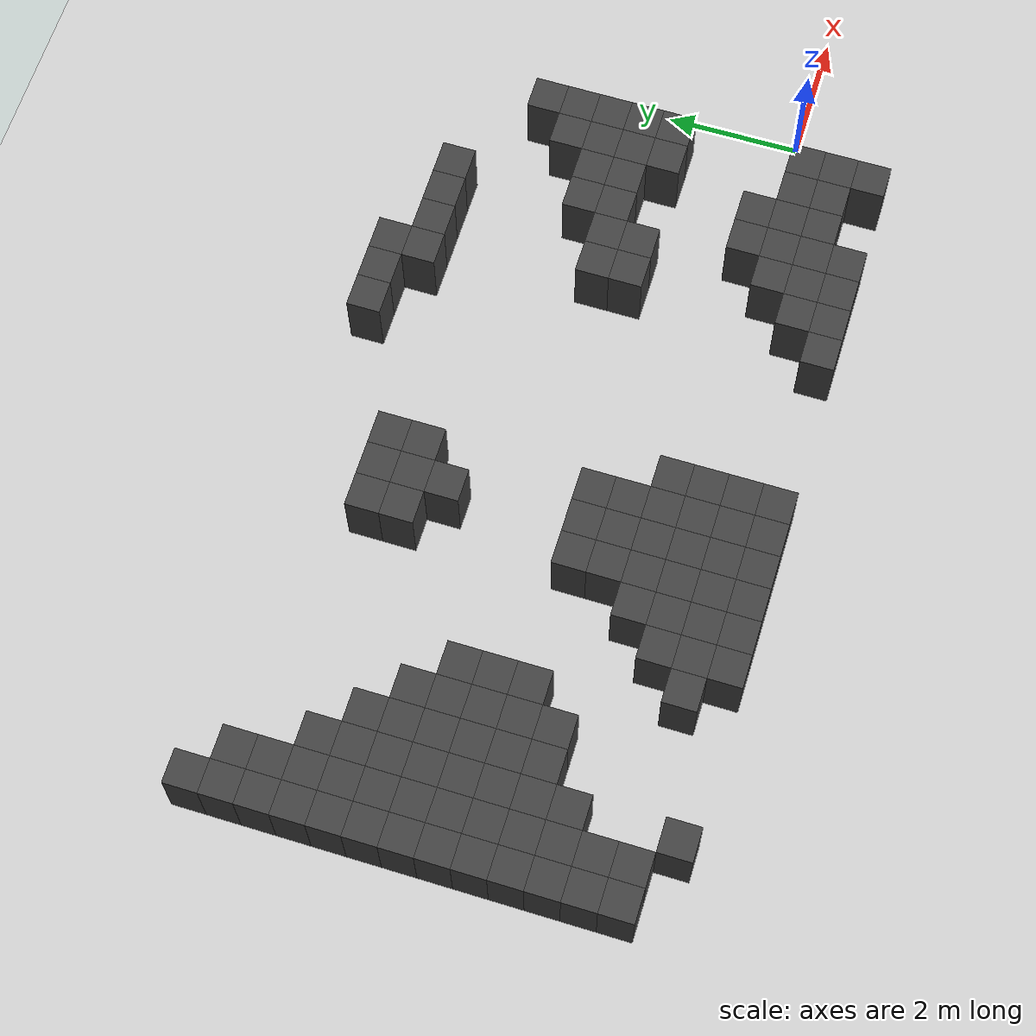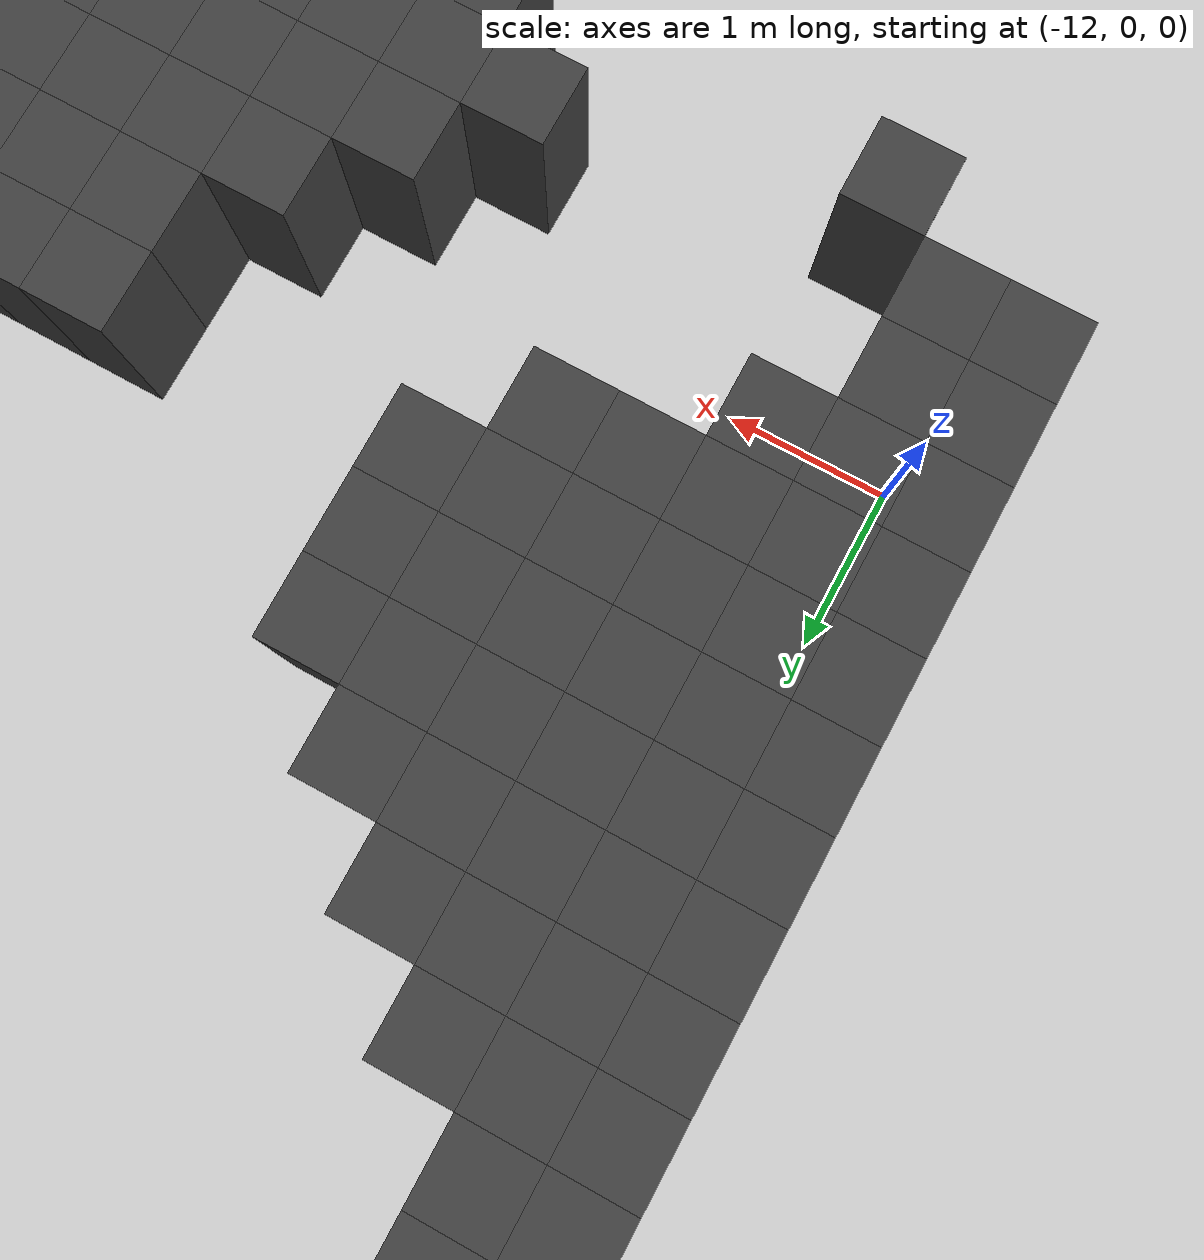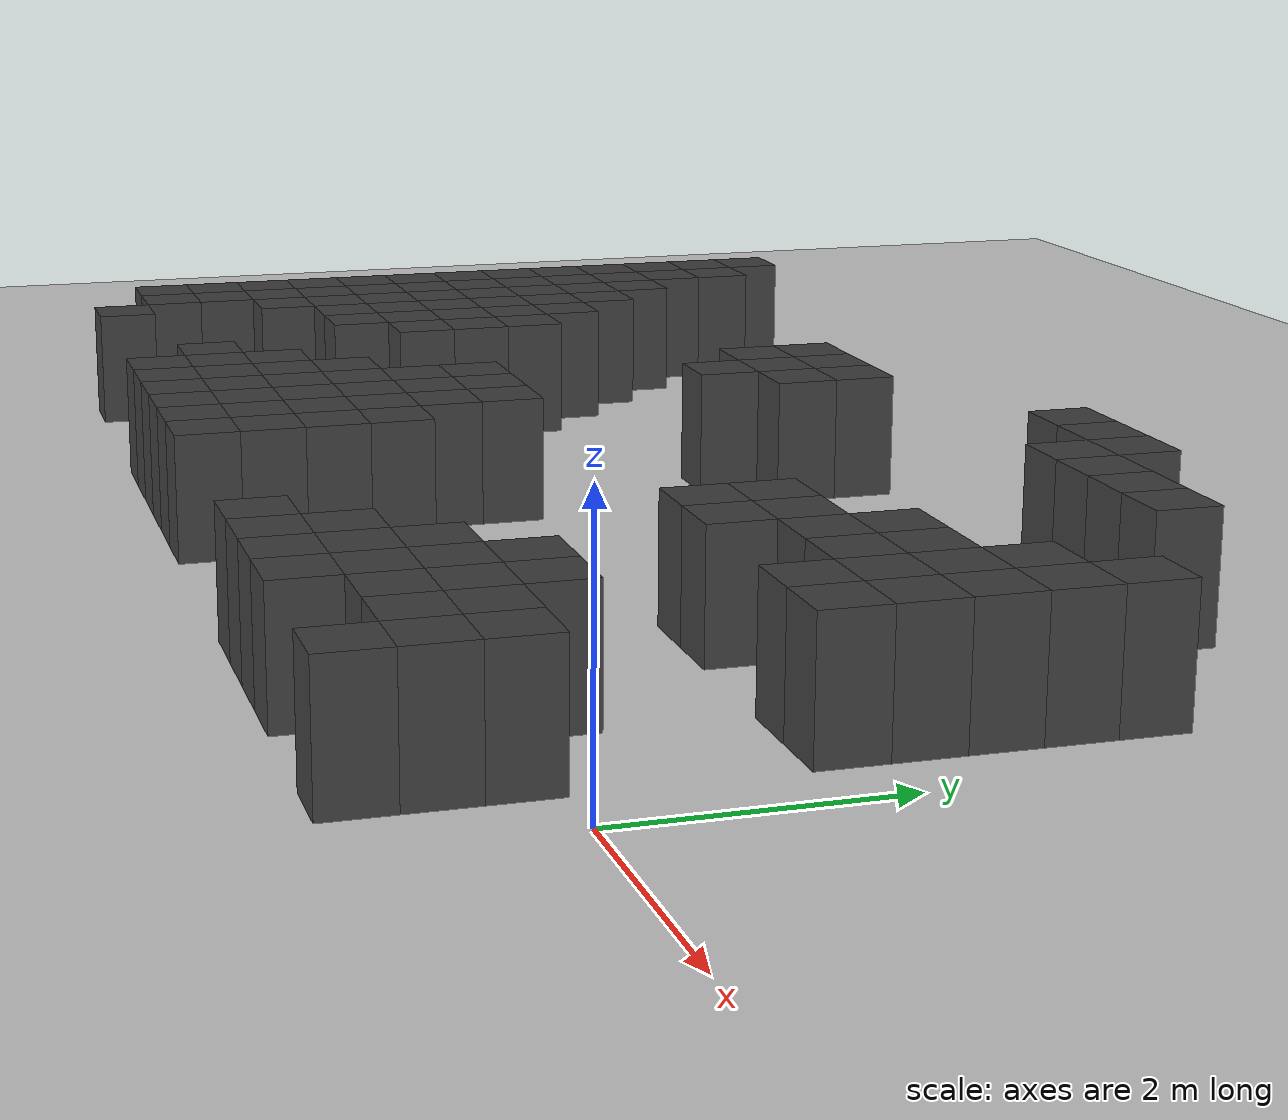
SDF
<sdf version="1.7">
 <world name="map_9713">
  <model name="ground_plane">
   <static>true</static>
   <link name="link">
    <collision name="collision">
     <geometry><plane><normal>0 0 1</normal><size>200 200</size></plane></geometry>
    </collision>
    <visual name="visual">
     <geometry><plane><normal>0 0 1</normal><size>200 200</size></plane></geometry>
     <material><ambient>0.8 0.8 0.8 1</ambient><diffuse>0.8 0.8 0.8 1</diffuse></material>
    </visual>
   </link>
  </model>
  <model name="maze_environment">
   <static>true</static>
   <link name="wall_256">
    <pose>-12.250 5.250 0.500 0 0 0</pose>
    <collision name="col"><geometry><box><size>0.5 0.5 1.0</size></box></geometry></collision>
    <visual name="vis">
     <geometry><box><size>0.5 0.5 1.0</size></box></geometry>
     <material><ambient>0.15 0.15 0.15 1</ambient><diffuse>0.25 0.25 0.25 1</diffuse></material>
    </visual>
   </link>
   <link name="wall_257">
    <pose>-4.750 5.250 0.500 0 0 0</pose>
    <collision name="col"><geometry><box><size>0.5 0.5 1.0</size></box></geometry></collision>
    <visual name="vis">
     <geometry><box><size>0.5 0.5 1.0</size></box></geometry>
     <material><ambient>0.15 0.15 0.15 1</ambient><diffuse>0.25 0.25 0.25 1</diffuse></material>
    </visual>
   </link>
   <link name="wall_258">
    <pose>-4.250 5.250 0.500 0 0 0</pose>
    <collision name="col"><geometry><box><size>0.5 0.5 1.0</size></box></geometry></collision>
    <visual name="vis">
     <geometry><box><size>0.5 0.5 1.0</size></box></geometry>
     <material><ambient>0.15 0.15 0.15 1</ambient><diffuse>0.25 0.25 0.25 1</diffuse></material>
    </visual>
   </link>
   <link name="wall_259">
    <pose>-3.750 5.250 0.500 0 0 0</pose>
    <collision name="col"><geometry><box><size>0.5 0.5 1.0</size></box></geometry></collision>
    <visual name="vis">
     <geometry><box><size>0.5 0.5 1.0</size></box></geometry>
     <material><ambient>0.15 0.15 0.15 1</ambient><diffuse>0.25 0.25 0.25 1</diffuse></material>
    </visual>
   </link>
   <link name="wall_271">
    <pose>-12.250 4.750 0.500 0 0 0</pose>
    <collision name="col"><geometry><box><size>0.5 0.5 1.0</size></box></geometry></collision>
    <visual name="vis">
     <geometry><box><size>0.5 0.5 1.0</size></box></geometry>
     <material><ambient>0.15 0.15 0.15 1</ambient><diffuse>0.25 0.25 0.25 1</diffuse></material>
    </visual>
   </link>
   <link name="wall_272">
    <pose>-11.750 4.750 0.500 0 0 0</pose>
    <collision name="col"><geometry><box><size>0.5 0.5 1.0</size></box></geometry></collision>
    <visual name="vis">
     <geometry><box><size>0.5 0.5 1.0</size></box></geometry>
     <material><ambient>0.15 0.15 0.15 1</ambient><diffuse>0.25 0.25 0.25 1</diffuse></material>
    </visual>
   </link>
   <link name="wall_273">
    <pose>-3.750 4.750 0.500 0 0 0</pose>
    <collision name="col"><geometry><box><size>0.5 0.5 1.0</size></box></geometry></collision>
    <visual name="vis">
     <geometry><box><size>0.5 0.5 1.0</size></box></geometry>
     <material><ambient>0.15 0.15 0.15 1</ambient><diffuse>0.25 0.25 0.25 1</diffuse></material>
    </visual>
   </link>
   <link name="wall_274">
    <pose>-3.250 4.750 0.500 0 0 0</pose>
    <collision name="col"><geometry><box><size>0.5 0.5 1.0</size></box></geometry></collision>
    <visual name="vis">
     <geometry><box><size>0.5 0.5 1.0</size></box></geometry>
     <material><ambient>0.15 0.15 0.15 1</ambient><diffuse>0.25 0.25 0.25 1</diffuse></material>
    </visual>
   </link>
   <link name="wall_275">
    <pose>-2.750 4.750 0.500 0 0 0</pose>
    <collision name="col"><geometry><box><size>0.5 0.5 1.0</size></box></geometry></collision>
    <visual name="vis">
     <geometry><box><size>0.5 0.5 1.0</size></box></geometry>
     <material><ambient>0.15 0.15 0.15 1</ambient><diffuse>0.25 0.25 0.25 1</diffuse></material>
    </visual>
   </link>
   <link name="wall_276">
    <pose>-2.250 4.750 0.500 0 0 0</pose>
    <collision name="col"><geometry><box><size>0.5 0.5 1.0</size></box></geometry></collision>
    <visual name="vis">
     <geometry><box><size>0.5 0.5 1.0</size></box></geometry>
     <material><ambient>0.15 0.15 0.15 1</ambient><diffuse>0.25 0.25 0.25 1</diffuse></material>
    </visual>
   </link>
   <link name="wall_283">
    <pose>-12.250 4.250 0.500 0 0 0</pose>
    <collision name="col"><geometry><box><size>0.5 0.5 1.0</size></box></geometry></collision>
    <visual name="vis">
     <geometry><box><size>0.5 0.5 1.0</size></box></geometry>
     <material><ambient>0.15 0.15 0.15 1</ambient><diffuse>0.25 0.25 0.25 1</diffuse></material>
    </visual>
   </link>
   <link name="wall_284">
    <pose>-11.750 4.250 0.500 0 0 0</pose>
    <collision name="col"><geometry><box><size>0.5 0.5 1.0</size></box></geometry></collision>
    <visual name="vis">
     <geometry><box><size>0.5 0.5 1.0</size></box></geometry>
     <material><ambient>0.15 0.15 0.15 1</ambient><diffuse>0.25 0.25 0.25 1</diffuse></material>
    </visual>
   </link>
   <link name="wall_285">
    <pose>-7.750 4.250 0.500 0 0 0</pose>
    <collision name="col"><geometry><box><size>0.5 0.5 1.0</size></box></geometry></collision>
    <visual name="vis">
     <geometry><box><size>0.5 0.5 1.0</size></box></geometry>
     <material><ambient>0.15 0.15 0.15 1</ambient><diffuse>0.25 0.25 0.25 1</diffuse></material>
    </visual>
   </link>
   <link name="wall_286">
    <pose>-7.250 4.250 0.500 0 0 0</pose>
    <collision name="col"><geometry><box><size>0.5 0.5 1.0</size></box></geometry></collision>
    <visual name="vis">
     <geometry><box><size>0.5 0.5 1.0</size></box></geometry>
     <material><ambient>0.15 0.15 0.15 1</ambient><diffuse>0.25 0.25 0.25 1</diffuse></material>
    </visual>
   </link>
   <link name="wall_287">
    <pose>-6.750 4.250 0.500 0 0 0</pose>
    <collision name="col"><geometry><box><size>0.5 0.5 1.0</size></box></geometry></collision>
    <visual name="vis">
     <geometry><box><size>0.5 0.5 1.0</size></box></geometry>
     <material><ambient>0.15 0.15 0.15 1</ambient><diffuse>0.25 0.25 0.25 1</diffuse></material>
    </visual>
   </link>
   <link name="wall_294">
    <pose>-12.250 3.750 0.500 0 0 0</pose>
    <collision name="col"><geometry><box><size>0.5 0.5 1.0</size></box></geometry></collision>
    <visual name="vis">
     <geometry><box><size>0.5 0.5 1.0</size></box></geometry>
     <material><ambient>0.15 0.15 0.15 1</ambient><diffuse>0.25 0.25 0.25 1</diffuse></material>
    </visual>
   </link>
   <link name="wall_295">
    <pose>-11.750 3.750 0.500 0 0 0</pose>
    <collision name="col"><geometry><box><size>0.5 0.5 1.0</size></box></geometry></collision>
    <visual name="vis">
     <geometry><box><size>0.5 0.5 1.0</size></box></geometry>
     <material><ambient>0.15 0.15 0.15 1</ambient><diffuse>0.25 0.25 0.25 1</diffuse></material>
    </visual>
   </link>
   <link name="wall_296">
    <pose>-11.250 3.750 0.500 0 0 0</pose>
    <collision name="col"><geometry><box><size>0.5 0.5 1.0</size></box></geometry></collision>
    <visual name="vis">
     <geometry><box><size>0.5 0.5 1.0</size></box></geometry>
     <material><ambient>0.15 0.15 0.15 1</ambient><diffuse>0.25 0.25 0.25 1</diffuse></material>
    </visual>
   </link>
   <link name="wall_297">
    <pose>-7.750 3.750 0.500 0 0 0</pose>
    <collision name="col"><geometry><box><size>0.5 0.5 1.0</size></box></geometry></collision>
    <visual name="vis">
     <geometry><box><size>0.5 0.5 1.0</size></box></geometry>
     <material><ambient>0.15 0.15 0.15 1</ambient><diffuse>0.25 0.25 0.25 1</diffuse></material>
    </visual>
   </link>
   <link name="wall_298">
    <pose>-7.250 3.750 0.500 0 0 0</pose>
    <collision name="col"><geometry><box><size>0.5 0.5 1.0</size></box></geometry></collision>
    <visual name="vis">
     <geometry><box><size>0.5 0.5 1.0</size></box></geometry>
     <material><ambient>0.15 0.15 0.15 1</ambient><diffuse>0.25 0.25 0.25 1</diffuse></material>
    </visual>
   </link>
   <link name="wall_299">
    <pose>-6.750 3.750 0.500 0 0 0</pose>
    <collision name="col"><geometry><box><size>0.5 0.5 1.0</size></box></geometry></collision>
    <visual name="vis">
     <geometry><box><size>0.5 0.5 1.0</size></box></geometry>
     <material><ambient>0.15 0.15 0.15 1</ambient><diffuse>0.25 0.25 0.25 1</diffuse></material>
    </visual>
   </link>
   <link name="wall_300">
    <pose>-0.750 3.750 0.500 0 0 0</pose>
    <collision name="col"><geometry><box><size>0.5 0.5 1.0</size></box></geometry></collision>
    <visual name="vis">
     <geometry><box><size>0.5 0.5 1.0</size></box></geometry>
     <material><ambient>0.15 0.15 0.15 1</ambient><diffuse>0.25 0.25 0.25 1</diffuse></material>
    </visual>
   </link>
   <link name="wall_311">
    <pose>-12.250 3.250 0.500 0 0 0</pose>
    <collision name="col"><geometry><box><size>0.5 0.5 1.0</size></box></geometry></collision>
    <visual name="vis">
     <geometry><box><size>0.5 0.5 1.0</size></box></geometry>
     <material><ambient>0.15 0.15 0.15 1</ambient><diffuse>0.25 0.25 0.25 1</diffuse></material>
    </visual>
   </link>
   <link name="wall_312">
    <pose>-11.750 3.250 0.500 0 0 0</pose>
    <collision name="col"><geometry><box><size>0.5 0.5 1.0</size></box></geometry></collision>
    <visual name="vis">
     <geometry><box><size>0.5 0.5 1.0</size></box></geometry>
     <material><ambient>0.15 0.15 0.15 1</ambient><diffuse>0.25 0.25 0.25 1</diffuse></material>
    </visual>
   </link>
   <link name="wall_313">
    <pose>-11.250 3.250 0.500 0 0 0</pose>
    <collision name="col"><geometry><box><size>0.5 0.5 1.0</size></box></geometry></collision>
    <visual name="vis">
     <geometry><box><size>0.5 0.5 1.0</size></box></geometry>
     <material><ambient>0.15 0.15 0.15 1</ambient><diffuse>0.25 0.25 0.25 1</diffuse></material>
    </visual>
   </link>
   <link name="wall_314">
    <pose>-10.750 3.250 0.500 0 0 0</pose>
    <collision name="col"><geometry><box><size>0.5 0.5 1.0</size></box></geometry></collision>
    <visual name="vis">
     <geometry><box><size>0.5 0.5 1.0</size></box></geometry>
     <material><ambient>0.15 0.15 0.15 1</ambient><diffuse>0.25 0.25 0.25 1</diffuse></material>
    </visual>
   </link>
   <link name="wall_315">
    <pose>-7.250 3.250 0.500 0 0 0</pose>
    <collision name="col"><geometry><box><size>0.5 0.5 1.0</size></box></geometry></collision>
    <visual name="vis">
     <geometry><box><size>0.5 0.5 1.0</size></box></geometry>
     <material><ambient>0.15 0.15 0.15 1</ambient><diffuse>0.25 0.25 0.25 1</diffuse></material>
    </visual>
   </link>
   <link name="wall_316">
    <pose>-1.250 3.250 0.500 0 0 0</pose>
    <collision name="col"><geometry><box><size>0.5 0.5 1.0</size></box></geometry></collision>
    <visual name="vis">
     <geometry><box><size>0.5 0.5 1.0</size></box></geometry>
     <material><ambient>0.15 0.15 0.15 1</ambient><diffuse>0.25 0.25 0.25 1</diffuse></material>
    </visual>
   </link>
   <link name="wall_317">
    <pose>-0.750 3.250 0.500 0 0 0</pose>
    <collision name="col"><geometry><box><size>0.5 0.5 1.0</size></box></geometry></collision>
    <visual name="vis">
     <geometry><box><size>0.5 0.5 1.0</size></box></geometry>
     <material><ambient>0.15 0.15 0.15 1</ambient><diffuse>0.25 0.25 0.25 1</diffuse></material>
    </visual>
   </link>
   <link name="wall_328">
    <pose>-12.250 2.750 0.500 0 0 0</pose>
    <collision name="col"><geometry><box><size>0.5 0.5 1.0</size></box></geometry></collision>
    <visual name="vis">
     <geometry><box><size>0.5 0.5 1.0</size></box></geometry>
     <material><ambient>0.15 0.15 0.15 1</ambient><diffuse>0.25 0.25 0.25 1</diffuse></material>
    </visual>
   </link>
   <link name="wall_329">
    <pose>-11.750 2.750 0.500 0 0 0</pose>
    <collision name="col"><geometry><box><size>0.5 0.5 1.0</size></box></geometry></collision>
    <visual name="vis">
     <geometry><box><size>0.5 0.5 1.0</size></box></geometry>
     <material><ambient>0.15 0.15 0.15 1</ambient><diffuse>0.25 0.25 0.25 1</diffuse></material>
    </visual>
   </link>
   <link name="wall_330">
    <pose>-11.250 2.750 0.500 0 0 0</pose>
    <collision name="col"><geometry><box><size>0.5 0.5 1.0</size></box></geometry></collision>
    <visual name="vis">
     <geometry><box><size>0.5 0.5 1.0</size></box></geometry>
     <material><ambient>0.15 0.15 0.15 1</ambient><diffuse>0.25 0.25 0.25 1</diffuse></material>
    </visual>
   </link>
   <link name="wall_331">
    <pose>-10.750 2.750 0.500 0 0 0</pose>
    <collision name="col"><geometry><box><size>0.5 0.5 1.0</size></box></geometry></collision>
    <visual name="vis">
     <geometry><box><size>0.5 0.5 1.0</size></box></geometry>
     <material><ambient>0.15 0.15 0.15 1</ambient><diffuse>0.25 0.25 0.25 1</diffuse></material>
    </visual>
   </link>
   <link name="wall_332">
    <pose>-10.250 2.750 0.500 0 0 0</pose>
    <collision name="col"><geometry><box><size>0.5 0.5 1.0</size></box></geometry></collision>
    <visual name="vis">
     <geometry><box><size>0.5 0.5 1.0</size></box></geometry>
     <material><ambient>0.15 0.15 0.15 1</ambient><diffuse>0.25 0.25 0.25 1</diffuse></material>
    </visual>
   </link>
   <link name="wall_333">
    <pose>-2.250 2.750 0.500 0 0 0</pose>
    <collision name="col"><geometry><box><size>0.5 0.5 1.0</size></box></geometry></collision>
    <visual name="vis">
     <geometry><box><size>0.5 0.5 1.0</size></box></geometry>
     <material><ambient>0.15 0.15 0.15 1</ambient><diffuse>0.25 0.25 0.25 1</diffuse></material>
    </visual>
   </link>
   <link name="wall_334">
    <pose>-1.750 2.750 0.500 0 0 0</pose>
    <collision name="col"><geometry><box><size>0.5 0.5 1.0</size></box></geometry></collision>
    <visual name="vis">
     <geometry><box><size>0.5 0.5 1.0</size></box></geometry>
     <material><ambient>0.15 0.15 0.15 1</ambient><diffuse>0.25 0.25 0.25 1</diffuse></material>
    </visual>
   </link>
   <link name="wall_335">
    <pose>-1.250 2.750 0.500 0 0 0</pose>
    <collision name="col"><geometry><box><size>0.5 0.5 1.0</size></box></geometry></collision>
    <visual name="vis">
     <geometry><box><size>0.5 0.5 1.0</size></box></geometry>
     <material><ambient>0.15 0.15 0.15 1</ambient><diffuse>0.25 0.25 0.25 1</diffuse></material>
    </visual>
   </link>
   <link name="wall_336">
    <pose>-0.750 2.750 0.500 0 0 0</pose>
    <collision name="col"><geometry><box><size>0.5 0.5 1.0</size></box></geometry></collision>
    <visual name="vis">
     <geometry><box><size>0.5 0.5 1.0</size></box></geometry>
     <material><ambient>0.15 0.15 0.15 1</ambient><diffuse>0.25 0.25 0.25 1</diffuse></material>
    </visual>
   </link>
   <link name="wall_346">
    <pose>-12.250 2.250 0.500 0 0 0</pose>
    <collision name="col"><geometry><box><size>0.5 0.5 1.0</size></box></geometry></collision>
    <visual name="vis">
     <geometry><box><size>0.5 0.5 1.0</size></box></geometry>
     <material><ambient>0.15 0.15 0.15 1</ambient><diffuse>0.25 0.25 0.25 1</diffuse></material>
    </visual>
   </link>
   <link name="wall_347">
    <pose>-11.750 2.250 0.500 0 0 0</pose>
    <collision name="col"><geometry><box><size>0.5 0.5 1.0</size></box></geometry></collision>
    <visual name="vis">
     <geometry><box><size>0.5 0.5 1.0</size></box></geometry>
     <material><ambient>0.15 0.15 0.15 1</ambient><diffuse>0.25 0.25 0.25 1</diffuse></material>
    </visual>
   </link>
   <link name="wall_348">
    <pose>-11.250 2.250 0.500 0 0 0</pose>
    <collision name="col"><geometry><box><size>0.5 0.5 1.0</size></box></geometry></collision>
    <visual name="vis">
     <geometry><box><size>0.5 0.5 1.0</size></box></geometry>
     <material><ambient>0.15 0.15 0.15 1</ambient><diffuse>0.25 0.25 0.25 1</diffuse></material>
    </visual>
   </link>
   <link name="wall_349">
    <pose>-10.750 2.250 0.500 0 0 0</pose>
    <collision name="col"><geometry><box><size>0.5 0.5 1.0</size></box></geometry></collision>
    <visual name="vis">
     <geometry><box><size>0.5 0.5 1.0</size></box></geometry>
     <material><ambient>0.15 0.15 0.15 1</ambient><diffuse>0.25 0.25 0.25 1</diffuse></material>
    </visual>
   </link>
   <link name="wall_350">
    <pose>-10.250 2.250 0.500 0 0 0</pose>
    <collision name="col"><geometry><box><size>0.5 0.5 1.0</size></box></geometry></collision>
    <visual name="vis">
     <geometry><box><size>0.5 0.5 1.0</size></box></geometry>
     <material><ambient>0.15 0.15 0.15 1</ambient><diffuse>0.25 0.25 0.25 1</diffuse></material>
    </visual>
   </link>
   <link name="wall_351">
    <pose>-9.750 2.250 0.500 0 0 0</pose>
    <collision name="col"><geometry><box><size>0.5 0.5 1.0</size></box></geometry></collision>
    <visual name="vis">
     <geometry><box><size>0.5 0.5 1.0</size></box></geometry>
     <material><ambient>0.15 0.15 0.15 1</ambient><diffuse>0.25 0.25 0.25 1</diffuse></material>
    </visual>
   </link>
   <link name="wall_352">
    <pose>-3.250 2.250 0.500 0 0 0</pose>
    <collision name="col"><geometry><box><size>0.5 0.5 1.0</size></box></geometry></collision>
    <visual name="vis">
     <geometry><box><size>0.5 0.5 1.0</size></box></geometry>
     <material><ambient>0.15 0.15 0.15 1</ambient><diffuse>0.25 0.25 0.25 1</diffuse></material>
    </visual>
   </link>
   <link name="wall_353">
    <pose>-2.750 2.250 0.500 0 0 0</pose>
    <collision name="col"><geometry><box><size>0.5 0.5 1.0</size></box></geometry></collision>
    <visual name="vis">
     <geometry><box><size>0.5 0.5 1.0</size></box></geometry>
     <material><ambient>0.15 0.15 0.15 1</ambient><diffuse>0.25 0.25 0.25 1</diffuse></material>
    </visual>
   </link>
   <link name="wall_354">
    <pose>-2.250 2.250 0.500 0 0 0</pose>
    <collision name="col"><geometry><box><size>0.5 0.5 1.0</size></box></geometry></collision>
    <visual name="vis">
     <geometry><box><size>0.5 0.5 1.0</size></box></geometry>
     <material><ambient>0.15 0.15 0.15 1</ambient><diffuse>0.25 0.25 0.25 1</diffuse></material>
    </visual>
   </link>
   <link name="wall_355">
    <pose>-1.750 2.250 0.500 0 0 0</pose>
    <collision name="col"><geometry><box><size>0.5 0.5 1.0</size></box></geometry></collision>
    <visual name="vis">
     <geometry><box><size>0.5 0.5 1.0</size></box></geometry>
     <material><ambient>0.15 0.15 0.15 1</ambient><diffuse>0.25 0.25 0.25 1</diffuse></material>
    </visual>
   </link>
   <link name="wall_356">
    <pose>-1.250 2.250 0.500 0 0 0</pose>
    <collision name="col"><geometry><box><size>0.5 0.5 1.0</size></box></geometry></collision>
    <visual name="vis">
     <geometry><box><size>0.5 0.5 1.0</size></box></geometry>
     <material><ambient>0.15 0.15 0.15 1</ambient><diffuse>0.25 0.25 0.25 1</diffuse></material>
    </visual>
   </link>
   <link name="wall_357">
    <pose>-0.750 2.250 0.500 0 0 0</pose>
    <collision name="col"><geometry><box><size>0.5 0.5 1.0</size></box></geometry></collision>
    <visual name="vis">
     <geometry><box><size>0.5 0.5 1.0</size></box></geometry>
     <material><ambient>0.15 0.15 0.15 1</ambient><diffuse>0.25 0.25 0.25 1</diffuse></material>
    </visual>
   </link>
   <link name="wall_368">
    <pose>-12.250 1.750 0.500 0 0 0</pose>
    <collision name="col"><geometry><box><size>0.5 0.5 1.0</size></box></geometry></collision>
    <visual name="vis">
     <geometry><box><size>0.5 0.5 1.0</size></box></geometry>
     <material><ambient>0.15 0.15 0.15 1</ambient><diffuse>0.25 0.25 0.25 1</diffuse></material>
    </visual>
   </link>
   <link name="wall_369">
    <pose>-11.750 1.750 0.500 0 0 0</pose>
    <collision name="col"><geometry><box><size>0.5 0.5 1.0</size></box></geometry></collision>
    <visual name="vis">
     <geometry><box><size>0.5 0.5 1.0</size></box></geometry>
     <material><ambient>0.15 0.15 0.15 1</ambient><diffuse>0.25 0.25 0.25 1</diffuse></material>
    </visual>
   </link>
   <link name="wall_370">
    <pose>-11.250 1.750 0.500 0 0 0</pose>
    <collision name="col"><geometry><box><size>0.5 0.5 1.0</size></box></geometry></collision>
    <visual name="vis">
     <geometry><box><size>0.5 0.5 1.0</size></box></geometry>
     <material><ambient>0.15 0.15 0.15 1</ambient><diffuse>0.25 0.25 0.25 1</diffuse></material>
    </visual>
   </link>
   <link name="wall_371">
    <pose>-10.750 1.750 0.500 0 0 0</pose>
    <collision name="col"><geometry><box><size>0.5 0.5 1.0</size></box></geometry></collision>
    <visual name="vis">
     <geometry><box><size>0.5 0.5 1.0</size></box></geometry>
     <material><ambient>0.15 0.15 0.15 1</ambient><diffuse>0.25 0.25 0.25 1</diffuse></material>
    </visual>
   </link>
   <link name="wall_372">
    <pose>-10.250 1.750 0.500 0 0 0</pose>
    <collision name="col"><geometry><box><size>0.5 0.5 1.0</size></box></geometry></collision>
    <visual name="vis">
     <geometry><box><size>0.5 0.5 1.0</size></box></geometry>
     <material><ambient>0.15 0.15 0.15 1</ambient><diffuse>0.25 0.25 0.25 1</diffuse></material>
    </visual>
   </link>
   <link name="wall_373">
    <pose>-9.750 1.750 0.500 0 0 0</pose>
    <collision name="col"><geometry><box><size>0.5 0.5 1.0</size></box></geometry></collision>
    <visual name="vis">
     <geometry><box><size>0.5 0.5 1.0</size></box></geometry>
     <material><ambient>0.15 0.15 0.15 1</ambient><diffuse>0.25 0.25 0.25 1</diffuse></material>
    </visual>
   </link>
   <link name="wall_374">
    <pose>-3.250 1.750 0.500 0 0 0</pose>
    <collision name="col"><geometry><box><size>0.5 0.5 1.0</size></box></geometry></collision>
    <visual name="vis">
     <geometry><box><size>0.5 0.5 1.0</size></box></geometry>
     <material><ambient>0.15 0.15 0.15 1</ambient><diffuse>0.25 0.25 0.25 1</diffuse></material>
    </visual>
   </link>
   <link name="wall_375">
    <pose>-2.750 1.750 0.500 0 0 0</pose>
    <collision name="col"><geometry><box><size>0.5 0.5 1.0</size></box></geometry></collision>
    <visual name="vis">
     <geometry><box><size>0.5 0.5 1.0</size></box></geometry>
     <material><ambient>0.15 0.15 0.15 1</ambient><diffuse>0.25 0.25 0.25 1</diffuse></material>
    </visual>
   </link>
   <link name="wall_376">
    <pose>-1.250 1.750 0.500 0 0 0</pose>
    <collision name="col"><geometry><box><size>0.5 0.5 1.0</size></box></geometry></collision>
    <visual name="vis">
     <geometry><box><size>0.5 0.5 1.0</size></box></geometry>
     <material><ambient>0.15 0.15 0.15 1</ambient><diffuse>0.25 0.25 0.25 1</diffuse></material>
    </visual>
   </link>
   <link name="wall_377">
    <pose>-0.750 1.750 0.500 0 0 0</pose>
    <collision name="col"><geometry><box><size>0.5 0.5 1.0</size></box></geometry></collision>
    <visual name="vis">
     <geometry><box><size>0.5 0.5 1.0</size></box></geometry>
     <material><ambient>0.15 0.15 0.15 1</ambient><diffuse>0.25 0.25 0.25 1</diffuse></material>
    </visual>
   </link>
   <link name="wall_385">
    <pose>-12.250 1.250 0.500 0 0 0</pose>
    <collision name="col"><geometry><box><size>0.5 0.5 1.0</size></box></geometry></collision>
    <visual name="vis">
     <geometry><box><size>0.5 0.5 1.0</size></box></geometry>
     <material><ambient>0.15 0.15 0.15 1</ambient><diffuse>0.25 0.25 0.25 1</diffuse></material>
    </visual>
   </link>
   <link name="wall_386">
    <pose>-11.750 1.250 0.500 0 0 0</pose>
    <collision name="col"><geometry><box><size>0.5 0.5 1.0</size></box></geometry></collision>
    <visual name="vis">
     <geometry><box><size>0.5 0.5 1.0</size></box></geometry>
     <material><ambient>0.15 0.15 0.15 1</ambient><diffuse>0.25 0.25 0.25 1</diffuse></material>
    </visual>
   </link>
   <link name="wall_387">
    <pose>-11.250 1.250 0.500 0 0 0</pose>
    <collision name="col"><geometry><box><size>0.5 0.5 1.0</size></box></geometry></collision>
    <visual name="vis">
     <geometry><box><size>0.5 0.5 1.0</size></box></geometry>
     <material><ambient>0.15 0.15 0.15 1</ambient><diffuse>0.25 0.25 0.25 1</diffuse></material>
    </visual>
   </link>
   <link name="wall_388">
    <pose>-10.750 1.250 0.500 0 0 0</pose>
    <collision name="col"><geometry><box><size>0.5 0.5 1.0</size></box></geometry></collision>
    <visual name="vis">
     <geometry><box><size>0.5 0.5 1.0</size></box></geometry>
     <material><ambient>0.15 0.15 0.15 1</ambient><diffuse>0.25 0.25 0.25 1</diffuse></material>
    </visual>
   </link>
   <link name="wall_389">
    <pose>-10.250 1.250 0.500 0 0 0</pose>
    <collision name="col"><geometry><box><size>0.5 0.5 1.0</size></box></geometry></collision>
    <visual name="vis">
     <geometry><box><size>0.5 0.5 1.0</size></box></geometry>
     <material><ambient>0.15 0.15 0.15 1</ambient><diffuse>0.25 0.25 0.25 1</diffuse></material>
    </visual>
   </link>
   <link name="wall_390">
    <pose>-9.750 1.250 0.500 0 0 0</pose>
    <collision name="col"><geometry><box><size>0.5 0.5 1.0</size></box></geometry></collision>
    <visual name="vis">
     <geometry><box><size>0.5 0.5 1.0</size></box></geometry>
     <material><ambient>0.15 0.15 0.15 1</ambient><diffuse>0.25 0.25 0.25 1</diffuse></material>
    </visual>
   </link>
   <link name="wall_391">
    <pose>-7.750 1.250 0.500 0 0 0</pose>
    <collision name="col"><geometry><box><size>0.5 0.5 1.0</size></box></geometry></collision>
    <visual name="vis">
     <geometry><box><size>0.5 0.5 1.0</size></box></geometry>
     <material><ambient>0.15 0.15 0.15 1</ambient><diffuse>0.25 0.25 0.25 1</diffuse></material>
    </visual>
   </link>
   <link name="wall_392">
    <pose>-7.250 1.250 0.500 0 0 0</pose>
    <collision name="col"><geometry><box><size>0.5 0.5 1.0</size></box></geometry></collision>
    <visual name="vis">
     <geometry><box><size>0.5 0.5 1.0</size></box></geometry>
     <material><ambient>0.15 0.15 0.15 1</ambient><diffuse>0.25 0.25 0.25 1</diffuse></material>
    </visual>
   </link>
   <link name="wall_393">
    <pose>-6.750 1.250 0.500 0 0 0</pose>
    <collision name="col"><geometry><box><size>0.5 0.5 1.0</size></box></geometry></collision>
    <visual name="vis">
     <geometry><box><size>0.5 0.5 1.0</size></box></geometry>
     <material><ambient>0.15 0.15 0.15 1</ambient><diffuse>0.25 0.25 0.25 1</diffuse></material>
    </visual>
   </link>
   <link name="wall_400">
    <pose>-12.250 0.750 0.500 0 0 0</pose>
    <collision name="col"><geometry><box><size>0.5 0.5 1.0</size></box></geometry></collision>
    <visual name="vis">
     <geometry><box><size>0.5 0.5 1.0</size></box></geometry>
     <material><ambient>0.15 0.15 0.15 1</ambient><diffuse>0.25 0.25 0.25 1</diffuse></material>
    </visual>
   </link>
   <link name="wall_401">
    <pose>-11.750 0.750 0.500 0 0 0</pose>
    <collision name="col"><geometry><box><size>0.5 0.5 1.0</size></box></geometry></collision>
    <visual name="vis">
     <geometry><box><size>0.5 0.5 1.0</size></box></geometry>
     <material><ambient>0.15 0.15 0.15 1</ambient><diffuse>0.25 0.25 0.25 1</diffuse></material>
    </visual>
   </link>
   <link name="wall_402">
    <pose>-11.250 0.750 0.500 0 0 0</pose>
    <collision name="col"><geometry><box><size>0.5 0.5 1.0</size></box></geometry></collision>
    <visual name="vis">
     <geometry><box><size>0.5 0.5 1.0</size></box></geometry>
     <material><ambient>0.15 0.15 0.15 1</ambient><diffuse>0.25 0.25 0.25 1</diffuse></material>
    </visual>
   </link>
   <link name="wall_403">
    <pose>-10.750 0.750 0.500 0 0 0</pose>
    <collision name="col"><geometry><box><size>0.5 0.5 1.0</size></box></geometry></collision>
    <visual name="vis">
     <geometry><box><size>0.5 0.5 1.0</size></box></geometry>
     <material><ambient>0.15 0.15 0.15 1</ambient><diffuse>0.25 0.25 0.25 1</diffuse></material>
    </visual>
   </link>
   <link name="wall_404">
    <pose>-10.250 0.750 0.500 0 0 0</pose>
    <collision name="col"><geometry><box><size>0.5 0.5 1.0</size></box></geometry></collision>
    <visual name="vis">
     <geometry><box><size>0.5 0.5 1.0</size></box></geometry>
     <material><ambient>0.15 0.15 0.15 1</ambient><diffuse>0.25 0.25 0.25 1</diffuse></material>
    </visual>
   </link>
   <link name="wall_405">
    <pose>-7.750 0.750 0.500 0 0 0</pose>
    <collision name="col"><geometry><box><size>0.5 0.5 1.0</size></box></geometry></collision>
    <visual name="vis">
     <geometry><box><size>0.5 0.5 1.0</size></box></geometry>
     <material><ambient>0.15 0.15 0.15 1</ambient><diffuse>0.25 0.25 0.25 1</diffuse></material>
    </visual>
   </link>
   <link name="wall_406">
    <pose>-7.250 0.750 0.500 0 0 0</pose>
    <collision name="col"><geometry><box><size>0.5 0.5 1.0</size></box></geometry></collision>
    <visual name="vis">
     <geometry><box><size>0.5 0.5 1.0</size></box></geometry>
     <material><ambient>0.15 0.15 0.15 1</ambient><diffuse>0.25 0.25 0.25 1</diffuse></material>
    </visual>
   </link>
   <link name="wall_407">
    <pose>-6.750 0.750 0.500 0 0 0</pose>
    <collision name="col"><geometry><box><size>0.5 0.5 1.0</size></box></geometry></collision>
    <visual name="vis">
     <geometry><box><size>0.5 0.5 1.0</size></box></geometry>
     <material><ambient>0.15 0.15 0.15 1</ambient><diffuse>0.25 0.25 0.25 1</diffuse></material>
    </visual>
   </link>
   <link name="wall_415">
    <pose>-12.250 0.250 0.500 0 0 0</pose>
    <collision name="col"><geometry><box><size>0.5 0.5 1.0</size></box></geometry></collision>
    <visual name="vis">
     <geometry><box><size>0.5 0.5 1.0</size></box></geometry>
     <material><ambient>0.15 0.15 0.15 1</ambient><diffuse>0.25 0.25 0.25 1</diffuse></material>
    </visual>
   </link>
   <link name="wall_416">
    <pose>-11.750 0.250 0.500 0 0 0</pose>
    <collision name="col"><geometry><box><size>0.5 0.5 1.0</size></box></geometry></collision>
    <visual name="vis">
     <geometry><box><size>0.5 0.5 1.0</size></box></geometry>
     <material><ambient>0.15 0.15 0.15 1</ambient><diffuse>0.25 0.25 0.25 1</diffuse></material>
    </visual>
   </link>
   <link name="wall_417">
    <pose>-11.250 0.250 0.500 0 0 0</pose>
    <collision name="col"><geometry><box><size>0.5 0.5 1.0</size></box></geometry></collision>
    <visual name="vis">
     <geometry><box><size>0.5 0.5 1.0</size></box></geometry>
     <material><ambient>0.15 0.15 0.15 1</ambient><diffuse>0.25 0.25 0.25 1</diffuse></material>
    </visual>
   </link>
   <link name="wall_418">
    <pose>-8.250 0.250 0.500 0 0 0</pose>
    <collision name="col"><geometry><box><size>0.5 0.5 1.0</size></box></geometry></collision>
    <visual name="vis">
     <geometry><box><size>0.5 0.5 1.0</size></box></geometry>
     <material><ambient>0.15 0.15 0.15 1</ambient><diffuse>0.25 0.25 0.25 1</diffuse></material>
    </visual>
   </link>
   <link name="wall_419">
    <pose>-7.750 0.250 0.500 0 0 0</pose>
    <collision name="col"><geometry><box><size>0.5 0.5 1.0</size></box></geometry></collision>
    <visual name="vis">
     <geometry><box><size>0.5 0.5 1.0</size></box></geometry>
     <material><ambient>0.15 0.15 0.15 1</ambient><diffuse>0.25 0.25 0.25 1</diffuse></material>
    </visual>
   </link>
   <link name="wall_420">
    <pose>-7.250 0.250 0.500 0 0 0</pose>
    <collision name="col"><geometry><box><size>0.5 0.5 1.0</size></box></geometry></collision>
    <visual name="vis">
     <geometry><box><size>0.5 0.5 1.0</size></box></geometry>
     <material><ambient>0.15 0.15 0.15 1</ambient><diffuse>0.25 0.25 0.25 1</diffuse></material>
    </visual>
   </link>
   <link name="wall_421">
    <pose>-6.750 0.250 0.500 0 0 0</pose>
    <collision name="col"><geometry><box><size>0.5 0.5 1.0</size></box></geometry></collision>
    <visual name="vis">
     <geometry><box><size>0.5 0.5 1.0</size></box></geometry>
     <material><ambient>0.15 0.15 0.15 1</ambient><diffuse>0.25 0.25 0.25 1</diffuse></material>
    </visual>
   </link>
   <link name="wall_422">
    <pose>-6.250 0.250 0.500 0 0 0</pose>
    <collision name="col"><geometry><box><size>0.5 0.5 1.0</size></box></geometry></collision>
    <visual name="vis">
     <geometry><box><size>0.5 0.5 1.0</size></box></geometry>
     <material><ambient>0.15 0.15 0.15 1</ambient><diffuse>0.25 0.25 0.25 1</diffuse></material>
    </visual>
   </link>
   <link name="wall_423">
    <pose>-2.250 0.250 0.500 0 0 0</pose>
    <collision name="col"><geometry><box><size>0.5 0.5 1.0</size></box></geometry></collision>
    <visual name="vis">
     <geometry><box><size>0.5 0.5 1.0</size></box></geometry>
     <material><ambient>0.15 0.15 0.15 1</ambient><diffuse>0.25 0.25 0.25 1</diffuse></material>
    </visual>
   </link>
   <link name="wall_424">
    <pose>-1.750 0.250 0.500 0 0 0</pose>
    <collision name="col"><geometry><box><size>0.5 0.5 1.0</size></box></geometry></collision>
    <visual name="vis">
     <geometry><box><size>0.5 0.5 1.0</size></box></geometry>
     <material><ambient>0.15 0.15 0.15 1</ambient><diffuse>0.25 0.25 0.25 1</diffuse></material>
    </visual>
   </link>
   <link name="wall_435">
    <pose>-12.250 -0.250 0.500 0 0 0</pose>
    <collision name="col"><geometry><box><size>0.5 0.5 1.0</size></box></geometry></collision>
    <visual name="vis">
     <geometry><box><size>0.5 0.5 1.0</size></box></geometry>
     <material><ambient>0.15 0.15 0.15 1</ambient><diffuse>0.25 0.25 0.25 1</diffuse></material>
    </visual>
   </link>
   <link name="wall_436">
    <pose>-11.750 -0.250 0.500 0 0 0</pose>
    <collision name="col"><geometry><box><size>0.5 0.5 1.0</size></box></geometry></collision>
    <visual name="vis">
     <geometry><box><size>0.5 0.5 1.0</size></box></geometry>
     <material><ambient>0.15 0.15 0.15 1</ambient><diffuse>0.25 0.25 0.25 1</diffuse></material>
    </visual>
   </link>
   <link name="wall_437">
    <pose>-8.750 -0.250 0.500 0 0 0</pose>
    <collision name="col"><geometry><box><size>0.5 0.5 1.0</size></box></geometry></collision>
    <visual name="vis">
     <geometry><box><size>0.5 0.5 1.0</size></box></geometry>
     <material><ambient>0.15 0.15 0.15 1</ambient><diffuse>0.25 0.25 0.25 1</diffuse></material>
    </visual>
   </link>
   <link name="wall_438">
    <pose>-8.250 -0.250 0.500 0 0 0</pose>
    <collision name="col"><geometry><box><size>0.5 0.5 1.0</size></box></geometry></collision>
    <visual name="vis">
     <geometry><box><size>0.5 0.5 1.0</size></box></geometry>
     <material><ambient>0.15 0.15 0.15 1</ambient><diffuse>0.25 0.25 0.25 1</diffuse></material>
    </visual>
   </link>
   <link name="wall_439">
    <pose>-7.750 -0.250 0.500 0 0 0</pose>
    <collision name="col"><geometry><box><size>0.5 0.5 1.0</size></box></geometry></collision>
    <visual name="vis">
     <geometry><box><size>0.5 0.5 1.0</size></box></geometry>
     <material><ambient>0.15 0.15 0.15 1</ambient><diffuse>0.25 0.25 0.25 1</diffuse></material>
    </visual>
   </link>
   <link name="wall_440">
    <pose>-7.250 -0.250 0.500 0 0 0</pose>
    <collision name="col"><geometry><box><size>0.5 0.5 1.0</size></box></geometry></collision>
    <visual name="vis">
     <geometry><box><size>0.5 0.5 1.0</size></box></geometry>
     <material><ambient>0.15 0.15 0.15 1</ambient><diffuse>0.25 0.25 0.25 1</diffuse></material>
    </visual>
   </link>
   <link name="wall_441">
    <pose>-6.750 -0.250 0.500 0 0 0</pose>
    <collision name="col"><geometry><box><size>0.5 0.5 1.0</size></box></geometry></collision>
    <visual name="vis">
     <geometry><box><size>0.5 0.5 1.0</size></box></geometry>
     <material><ambient>0.15 0.15 0.15 1</ambient><diffuse>0.25 0.25 0.25 1</diffuse></material>
    </visual>
   </link>
   <link name="wall_442">
    <pose>-6.250 -0.250 0.500 0 0 0</pose>
    <collision name="col"><geometry><box><size>0.5 0.5 1.0</size></box></geometry></collision>
    <visual name="vis">
     <geometry><box><size>0.5 0.5 1.0</size></box></geometry>
     <material><ambient>0.15 0.15 0.15 1</ambient><diffuse>0.25 0.25 0.25 1</diffuse></material>
    </visual>
   </link>
   <link name="wall_443">
    <pose>-2.750 -0.250 0.500 0 0 0</pose>
    <collision name="col"><geometry><box><size>0.5 0.5 1.0</size></box></geometry></collision>
    <visual name="vis">
     <geometry><box><size>0.5 0.5 1.0</size></box></geometry>
     <material><ambient>0.15 0.15 0.15 1</ambient><diffuse>0.25 0.25 0.25 1</diffuse></material>
    </visual>
   </link>
   <link name="wall_444">
    <pose>-2.250 -0.250 0.500 0 0 0</pose>
    <collision name="col"><geometry><box><size>0.5 0.5 1.0</size></box></geometry></collision>
    <visual name="vis">
     <geometry><box><size>0.5 0.5 1.0</size></box></geometry>
     <material><ambient>0.15 0.15 0.15 1</ambient><diffuse>0.25 0.25 0.25 1</diffuse></material>
    </visual>
   </link>
   <link name="wall_445">
    <pose>-1.750 -0.250 0.500 0 0 0</pose>
    <collision name="col"><geometry><box><size>0.5 0.5 1.0</size></box></geometry></collision>
    <visual name="vis">
     <geometry><box><size>0.5 0.5 1.0</size></box></geometry>
     <material><ambient>0.15 0.15 0.15 1</ambient><diffuse>0.25 0.25 0.25 1</diffuse></material>
    </visual>
   </link>
   <link name="wall_446">
    <pose>-1.250 -0.250 0.500 0 0 0</pose>
    <collision name="col"><geometry><box><size>0.5 0.5 1.0</size></box></geometry></collision>
    <visual name="vis">
     <geometry><box><size>0.5 0.5 1.0</size></box></geometry>
     <material><ambient>0.15 0.15 0.15 1</ambient><diffuse>0.25 0.25 0.25 1</diffuse></material>
    </visual>
   </link>
   <link name="wall_447">
    <pose>-0.750 -0.250 0.500 0 0 0</pose>
    <collision name="col"><geometry><box><size>0.5 0.5 1.0</size></box></geometry></collision>
    <visual name="vis">
     <geometry><box><size>0.5 0.5 1.0</size></box></geometry>
     <material><ambient>0.15 0.15 0.15 1</ambient><diffuse>0.25 0.25 0.25 1</diffuse></material>
    </visual>
   </link>
   <link name="wall_461">
    <pose>-12.250 -0.750 0.500 0 0 0</pose>
    <collision name="col"><geometry><box><size>0.5 0.5 1.0</size></box></geometry></collision>
    <visual name="vis">
     <geometry><box><size>0.5 0.5 1.0</size></box></geometry>
     <material><ambient>0.15 0.15 0.15 1</ambient><diffuse>0.25 0.25 0.25 1</diffuse></material>
    </visual>
   </link>
   <link name="wall_462">
    <pose>-11.750 -0.750 0.500 0 0 0</pose>
    <collision name="col"><geometry><box><size>0.5 0.5 1.0</size></box></geometry></collision>
    <visual name="vis">
     <geometry><box><size>0.5 0.5 1.0</size></box></geometry>
     <material><ambient>0.15 0.15 0.15 1</ambient><diffuse>0.25 0.25 0.25 1</diffuse></material>
    </visual>
   </link>
   <link name="wall_463">
    <pose>-9.250 -0.750 0.500 0 0 0</pose>
    <collision name="col"><geometry><box><size>0.5 0.5 1.0</size></box></geometry></collision>
    <visual name="vis">
     <geometry><box><size>0.5 0.5 1.0</size></box></geometry>
     <material><ambient>0.15 0.15 0.15 1</ambient><diffuse>0.25 0.25 0.25 1</diffuse></material>
    </visual>
   </link>
   <link name="wall_464">
    <pose>-8.750 -0.750 0.500 0 0 0</pose>
    <collision name="col"><geometry><box><size>0.5 0.5 1.0</size></box></geometry></collision>
    <visual name="vis">
     <geometry><box><size>0.5 0.5 1.0</size></box></geometry>
     <material><ambient>0.15 0.15 0.15 1</ambient><diffuse>0.25 0.25 0.25 1</diffuse></material>
    </visual>
   </link>
   <link name="wall_465">
    <pose>-8.250 -0.750 0.500 0 0 0</pose>
    <collision name="col"><geometry><box><size>0.5 0.5 1.0</size></box></geometry></collision>
    <visual name="vis">
     <geometry><box><size>0.5 0.5 1.0</size></box></geometry>
     <material><ambient>0.15 0.15 0.15 1</ambient><diffuse>0.25 0.25 0.25 1</diffuse></material>
    </visual>
   </link>
   <link name="wall_466">
    <pose>-7.750 -0.750 0.500 0 0 0</pose>
    <collision name="col"><geometry><box><size>0.5 0.5 1.0</size></box></geometry></collision>
    <visual name="vis">
     <geometry><box><size>0.5 0.5 1.0</size></box></geometry>
     <material><ambient>0.15 0.15 0.15 1</ambient><diffuse>0.25 0.25 0.25 1</diffuse></material>
    </visual>
   </link>
   <link name="wall_467">
    <pose>-7.250 -0.750 0.500 0 0 0</pose>
    <collision name="col"><geometry><box><size>0.5 0.5 1.0</size></box></geometry></collision>
    <visual name="vis">
     <geometry><box><size>0.5 0.5 1.0</size></box></geometry>
     <material><ambient>0.15 0.15 0.15 1</ambient><diffuse>0.25 0.25 0.25 1</diffuse></material>
    </visual>
   </link>
   <link name="wall_468">
    <pose>-6.750 -0.750 0.500 0 0 0</pose>
    <collision name="col"><geometry><box><size>0.5 0.5 1.0</size></box></geometry></collision>
    <visual name="vis">
     <geometry><box><size>0.5 0.5 1.0</size></box></geometry>
     <material><ambient>0.15 0.15 0.15 1</ambient><diffuse>0.25 0.25 0.25 1</diffuse></material>
    </visual>
   </link>
   <link name="wall_469">
    <pose>-6.250 -0.750 0.500 0 0 0</pose>
    <collision name="col"><geometry><box><size>0.5 0.5 1.0</size></box></geometry></collision>
    <visual name="vis">
     <geometry><box><size>0.5 0.5 1.0</size></box></geometry>
     <material><ambient>0.15 0.15 0.15 1</ambient><diffuse>0.25 0.25 0.25 1</diffuse></material>
    </visual>
   </link>
   <link name="wall_470">
    <pose>-3.250 -0.750 0.500 0 0 0</pose>
    <collision name="col"><geometry><box><size>0.5 0.5 1.0</size></box></geometry></collision>
    <visual name="vis">
     <geometry><box><size>0.5 0.5 1.0</size></box></geometry>
     <material><ambient>0.15 0.15 0.15 1</ambient><diffuse>0.25 0.25 0.25 1</diffuse></material>
    </visual>
   </link>
   <link name="wall_471">
    <pose>-2.750 -0.750 0.500 0 0 0</pose>
    <collision name="col"><geometry><box><size>0.5 0.5 1.0</size></box></geometry></collision>
    <visual name="vis">
     <geometry><box><size>0.5 0.5 1.0</size></box></geometry>
     <material><ambient>0.15 0.15 0.15 1</ambient><diffuse>0.25 0.25 0.25 1</diffuse></material>
    </visual>
   </link>
   <link name="wall_472">
    <pose>-2.250 -0.750 0.500 0 0 0</pose>
    <collision name="col"><geometry><box><size>0.5 0.5 1.0</size></box></geometry></collision>
    <visual name="vis">
     <geometry><box><size>0.5 0.5 1.0</size></box></geometry>
     <material><ambient>0.15 0.15 0.15 1</ambient><diffuse>0.25 0.25 0.25 1</diffuse></material>
    </visual>
   </link>
   <link name="wall_473">
    <pose>-1.750 -0.750 0.500 0 0 0</pose>
    <collision name="col"><geometry><box><size>0.5 0.5 1.0</size></box></geometry></collision>
    <visual name="vis">
     <geometry><box><size>0.5 0.5 1.0</size></box></geometry>
     <material><ambient>0.15 0.15 0.15 1</ambient><diffuse>0.25 0.25 0.25 1</diffuse></material>
    </visual>
   </link>
   <link name="wall_474">
    <pose>-1.250 -0.750 0.500 0 0 0</pose>
    <collision name="col"><geometry><box><size>0.5 0.5 1.0</size></box></geometry></collision>
    <visual name="vis">
     <geometry><box><size>0.5 0.5 1.0</size></box></geometry>
     <material><ambient>0.15 0.15 0.15 1</ambient><diffuse>0.25 0.25 0.25 1</diffuse></material>
    </visual>
   </link>
   <link name="wall_475">
    <pose>-0.750 -0.750 0.500 0 0 0</pose>
    <collision name="col"><geometry><box><size>0.5 0.5 1.0</size></box></geometry></collision>
    <visual name="vis">
     <geometry><box><size>0.5 0.5 1.0</size></box></geometry>
     <material><ambient>0.15 0.15 0.15 1</ambient><diffuse>0.25 0.25 0.25 1</diffuse></material>
    </visual>
   </link>
   <link name="wall_491">
    <pose>-11.250 -1.250 0.500 0 0 0</pose>
    <collision name="col"><geometry><box><size>0.5 0.5 1.0</size></box></geometry></collision>
    <visual name="vis">
     <geometry><box><size>0.5 0.5 1.0</size></box></geometry>
     <material><ambient>0.15 0.15 0.15 1</ambient><diffuse>0.25 0.25 0.25 1</diffuse></material>
    </visual>
   </link>
   <link name="wall_492">
    <pose>-8.750 -1.250 0.500 0 0 0</pose>
    <collision name="col"><geometry><box><size>0.5 0.5 1.0</size></box></geometry></collision>
    <visual name="vis">
     <geometry><box><size>0.5 0.5 1.0</size></box></geometry>
     <material><ambient>0.15 0.15 0.15 1</ambient><diffuse>0.25 0.25 0.25 1</diffuse></material>
    </visual>
   </link>
   <link name="wall_493">
    <pose>-8.250 -1.250 0.500 0 0 0</pose>
    <collision name="col"><geometry><box><size>0.5 0.5 1.0</size></box></geometry></collision>
    <visual name="vis">
     <geometry><box><size>0.5 0.5 1.0</size></box></geometry>
     <material><ambient>0.15 0.15 0.15 1</ambient><diffuse>0.25 0.25 0.25 1</diffuse></material>
    </visual>
   </link>
   <link name="wall_494">
    <pose>-7.750 -1.250 0.500 0 0 0</pose>
    <collision name="col"><geometry><box><size>0.5 0.5 1.0</size></box></geometry></collision>
    <visual name="vis">
     <geometry><box><size>0.5 0.5 1.0</size></box></geometry>
     <material><ambient>0.15 0.15 0.15 1</ambient><diffuse>0.25 0.25 0.25 1</diffuse></material>
    </visual>
   </link>
   <link name="wall_495">
    <pose>-7.250 -1.250 0.500 0 0 0</pose>
    <collision name="col"><geometry><box><size>0.5 0.5 1.0</size></box></geometry></collision>
    <visual name="vis">
     <geometry><box><size>0.5 0.5 1.0</size></box></geometry>
     <material><ambient>0.15 0.15 0.15 1</ambient><diffuse>0.25 0.25 0.25 1</diffuse></material>
    </visual>
   </link>
   <link name="wall_496">
    <pose>-6.750 -1.250 0.500 0 0 0</pose>
    <collision name="col"><geometry><box><size>0.5 0.5 1.0</size></box></geometry></collision>
    <visual name="vis">
     <geometry><box><size>0.5 0.5 1.0</size></box></geometry>
     <material><ambient>0.15 0.15 0.15 1</ambient><diffuse>0.25 0.25 0.25 1</diffuse></material>
    </visual>
   </link>
   <link name="wall_497">
    <pose>-6.250 -1.250 0.500 0 0 0</pose>
    <collision name="col"><geometry><box><size>0.5 0.5 1.0</size></box></geometry></collision>
    <visual name="vis">
     <geometry><box><size>0.5 0.5 1.0</size></box></geometry>
     <material><ambient>0.15 0.15 0.15 1</ambient><diffuse>0.25 0.25 0.25 1</diffuse></material>
    </visual>
   </link>
   <link name="wall_498">
    <pose>-3.750 -1.250 0.500 0 0 0</pose>
    <collision name="col"><geometry><box><size>0.5 0.5 1.0</size></box></geometry></collision>
    <visual name="vis">
     <geometry><box><size>0.5 0.5 1.0</size></box></geometry>
     <material><ambient>0.15 0.15 0.15 1</ambient><diffuse>0.25 0.25 0.25 1</diffuse></material>
    </visual>
   </link>
   <link name="wall_499">
    <pose>-3.250 -1.250 0.500 0 0 0</pose>
    <collision name="col"><geometry><box><size>0.5 0.5 1.0</size></box></geometry></collision>
    <visual name="vis">
     <geometry><box><size>0.5 0.5 1.0</size></box></geometry>
     <material><ambient>0.15 0.15 0.15 1</ambient><diffuse>0.25 0.25 0.25 1</diffuse></material>
    </visual>
   </link>
   <link name="wall_500">
    <pose>-2.750 -1.250 0.500 0 0 0</pose>
    <collision name="col"><geometry><box><size>0.5 0.5 1.0</size></box></geometry></collision>
    <visual name="vis">
     <geometry><box><size>0.5 0.5 1.0</size></box></geometry>
     <material><ambient>0.15 0.15 0.15 1</ambient><diffuse>0.25 0.25 0.25 1</diffuse></material>
    </visual>
   </link>
   <link name="wall_501">
    <pose>-2.250 -1.250 0.500 0 0 0</pose>
    <collision name="col"><geometry><box><size>0.5 0.5 1.0</size></box></geometry></collision>
    <visual name="vis">
     <geometry><box><size>0.5 0.5 1.0</size></box></geometry>
     <material><ambient>0.15 0.15 0.15 1</ambient><diffuse>0.25 0.25 0.25 1</diffuse></material>
    </visual>
   </link>
   <link name="wall_502">
    <pose>-0.750 -1.250 0.500 0 0 0</pose>
    <collision name="col"><geometry><box><size>0.5 0.5 1.0</size></box></geometry></collision>
    <visual name="vis">
     <geometry><box><size>0.5 0.5 1.0</size></box></geometry>
     <material><ambient>0.15 0.15 0.15 1</ambient><diffuse>0.25 0.25 0.25 1</diffuse></material>
    </visual>
   </link>
  </model>
 </world>
</sdf>
